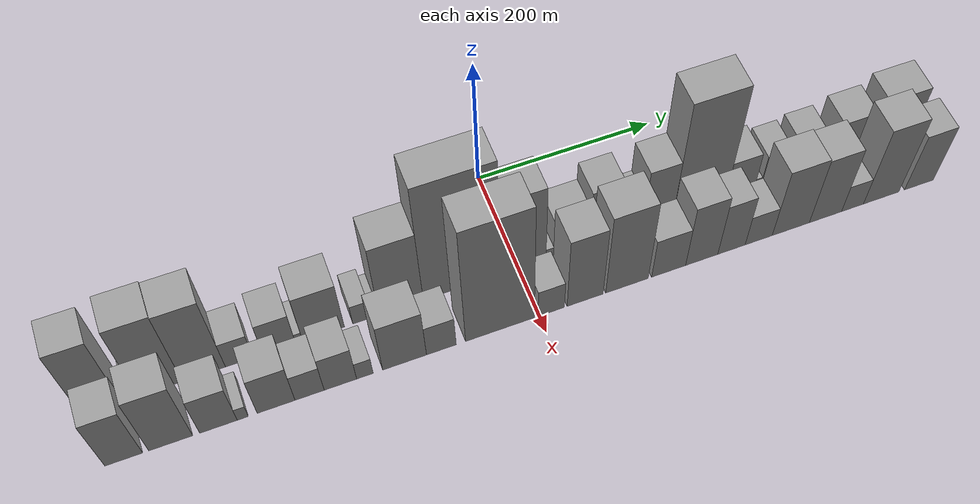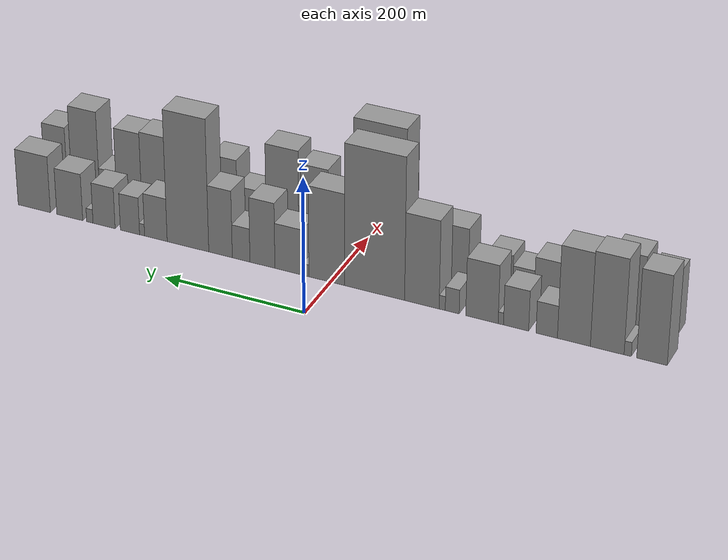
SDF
<sdf version="1.6">
 <world name="default">
  <scene>
   <sky><clouds><speed>12</speed></clouds></sky>
   <ambient>0.4 0.4 0.4 1</ambient>
   <background>0.7 0.7 0.7 1</background>
   <shadows>1</shadows>
  </scene>
  <gravity>0 0 -9.8066</gravity>
  <magnetic_field>6e-06 2.3e-05 -4.2e-05</magnetic_field>
  <physics default="0" name="default_physics" type="ode">
   <ode>
    <solver>
     <type>quick</type>
     <iters>10</iters>
     <sor>1.0</sor>
     <use_dynamic_moi_rescaling>0</use_dynamic_moi_rescaling>
    </solver>
    <constraints>
     <cfm>0</cfm>
     <erp>0.2</erp>
     <contact_max_correcting_vel>100</contact_max_correcting_vel>
     <contact_surface_layer>0.001</contact_surface_layer>
    </constraints>
   </ode>
   <max_step_size>0.004</max_step_size>
   <real_time_factor>1</real_time_factor>
   <real_time_update_rate>250</real_time_update_rate>
  </physics>
  <light name="sun" type="directional">
   <pose>0 0 10 0 0 0</pose>
   <diffuse>0.8 0.8 0.8 1</diffuse>
   <specular>0.2 0.2 0.2 1</specular>
   <attenuation>
    <range>1000</range>
    <constant>0.9</constant>
    <linear>0.01</linear>
    <quadratic>0.001</quadratic>
   </attenuation>
   <direction>-0.5 0.1 -0.9</direction>
  </light>
  <model name="building_1">
   <static>1</static>
   <pose>100.0000 -439.9697 0 0.000000 0.000000 0.000000</pose>
   <link name="link">
    <pose>0 0 66.00 0 0 0</pose>
    <collision name="collision"><geometry><box><size>40.0000 40.0607 132.0000</size></box></geometry></collision>
    <visual name="visual">
     <cast_shadows>0</cast_shadows>
     <geometry><box><size>40.0000 40.0607 132.0000</size></box></geometry>
     <material>
      <script>
       <uri>model://grey_wall/materials/scripts</uri>
       <uri>model://grey_wall/materials/textures</uri>
       <name>vrc/grey_wall</name>
      </script>
     </material>
    </visual>
   </link>
  </model>
  <model name="building_2">
   <static>1</static>
   <pose>100.0000 -408.1510 0 0.000000 0.000000 0.000000</pose>
   <link name="link">
    <pose>0 0 10.50 0 0 0</pose>
    <collision name="collision"><geometry><box><size>40.0000 9.5766 21.0000</size></box></geometry></collision>
    <visual name="visual">
     <cast_shadows>0</cast_shadows>
     <geometry><box><size>40.0000 9.5766 21.0000</size></box></geometry>
     <material>
      <script>
       <uri>model://grey_wall/materials/scripts</uri>
       <uri>model://grey_wall/materials/textures</uri>
       <name>vrc/grey_wall</name>
      </script>
     </material>
    </visual>
   </link>
  </model>
  <model name="building_3">
   <static>1</static>
   <pose>100.0000 -381.0178 0 0.000000 0.000000 0.000000</pose>
   <link name="link">
    <pose>0 0 70.50 0 0 0</pose>
    <collision name="collision"><geometry><box><size>40.0000 44.6897 141.0000</size></box></geometry></collision>
    <visual name="visual">
     <cast_shadows>0</cast_shadows>
     <geometry><box><size>40.0000 44.6897 141.0000</size></box></geometry>
     <material>
      <script>
       <uri>model://grey_wall/materials/scripts</uri>
       <uri>model://grey_wall/materials/textures</uri>
       <name>vrc/grey_wall</name>
      </script>
     </material>
    </visual>
   </link>
  </model>
  <model name="building_4">
   <static>1</static>
   <pose>100.0000 -336.6244 0 0.000000 0.000000 0.000000</pose>
   <link name="link">
    <pose>0 0 69.00 0 0 0</pose>
    <collision name="collision"><geometry><box><size>40.0000 44.0972 138.0000</size></box></geometry></collision>
    <visual name="visual">
     <cast_shadows>0</cast_shadows>
     <geometry><box><size>40.0000 44.0972 138.0000</size></box></geometry>
     <material>
      <script>
       <uri>model://grey_wall/materials/scripts</uri>
       <uri>model://grey_wall/materials/textures</uri>
       <name>vrc/grey_wall</name>
      </script>
     </material>
    </visual>
   </link>
  </model>
  <model name="building_5">
   <static>1</static>
   <pose>100.0000 -300.2039 0 0.000000 0.000000 0.000000</pose>
   <link name="link">
    <pose>0 0 24.00 0 0 0</pose>
    <collision name="collision"><geometry><box><size>40.0000 28.7438 48.0000</size></box></geometry></collision>
    <visual name="visual">
     <cast_shadows>0</cast_shadows>
     <geometry><box><size>40.0000 28.7438 48.0000</size></box></geometry>
     <material>
      <script>
       <uri>model://grey_wall/materials/scripts</uri>
       <uri>model://grey_wall/materials/textures</uri>
       <name>vrc/grey_wall</name>
      </script>
     </material>
    </visual>
   </link>
  </model>
  <model name="building_6">
   <static>1</static>
   <pose>100.0000 -258.7220 0 0.000000 0.000000 0.000000</pose>
   <link name="link">
    <pose>0 0 30.00 0 0 0</pose>
    <collision name="collision"><geometry><box><size>40.0000 34.2200 60.0000</size></box></geometry></collision>
    <visual name="visual">
     <cast_shadows>0</cast_shadows>
     <geometry><box><size>40.0000 34.2200 60.0000</size></box></geometry>
     <material>
      <script>
       <uri>model://grey_wall/materials/scripts</uri>
       <uri>model://grey_wall/materials/textures</uri>
       <name>vrc/grey_wall</name>
      </script>
     </material>
    </visual>
   </link>
  </model>
  <model name="building_7">
   <static>1</static>
   <pose>100.0000 -237.9562 0 0.000000 0.000000 0.000000</pose>
   <link name="link">
    <pose>0 0 9.00 0 0 0</pose>
    <collision name="collision"><geometry><box><size>40.0000 7.3117 18.0000</size></box></geometry></collision>
    <visual name="visual">
     <cast_shadows>0</cast_shadows>
     <geometry><box><size>40.0000 7.3117 18.0000</size></box></geometry>
     <material>
      <script>
       <uri>model://grey_wall/materials/scripts</uri>
       <uri>model://grey_wall/materials/textures</uri>
       <name>vrc/grey_wall</name>
      </script>
     </material>
    </visual>
   </link>
  </model>
  <model name="building_8">
   <static>1</static>
   <pose>100.0000 -212.0829 0 0.000000 0.000000 0.000000</pose>
   <link name="link">
    <pose>0 0 43.50 0 0 0</pose>
    <collision name="collision"><geometry><box><size>40.0000 44.4349 87.0000</size></box></geometry></collision>
    <visual name="visual">
     <cast_shadows>0</cast_shadows>
     <geometry><box><size>40.0000 44.4349 87.0000</size></box></geometry>
     <material>
      <script>
       <uri>model://grey_wall/materials/scripts</uri>
       <uri>model://grey_wall/materials/textures</uri>
       <name>vrc/grey_wall</name>
      </script>
     </material>
    </visual>
   </link>
  </model>
  <model name="building_9">
   <static>1</static>
   <pose>100.0000 -171.2126 0 0.000000 0.000000 0.000000</pose>
   <link name="link">
    <pose>0 0 18.00 0 0 0</pose>
    <collision name="collision"><geometry><box><size>40.0000 19.3058 36.0000</size></box></geometry></collision>
    <visual name="visual">
     <cast_shadows>0</cast_shadows>
     <geometry><box><size>40.0000 19.3058 36.0000</size></box></geometry>
     <material>
      <script>
       <uri>model://grey_wall/materials/scripts</uri>
       <uri>model://grey_wall/materials/textures</uri>
       <name>vrc/grey_wall</name>
      </script>
     </material>
    </visual>
   </link>
  </model>
  <model name="building_10">
   <static>1</static>
   <pose>100.0000 -157.3127 0 0.000000 0.000000 0.000000</pose>
   <link name="link">
    <pose>0 0 10.50 0 0 0</pose>
    <collision name="collision"><geometry><box><size>40.0000 8.4939 21.0000</size></box></geometry></collision>
    <visual name="visual">
     <cast_shadows>0</cast_shadows>
     <geometry><box><size>40.0000 8.4939 21.0000</size></box></geometry>
     <material>
      <script>
       <uri>model://grey_wall/materials/scripts</uri>
       <uri>model://grey_wall/materials/textures</uri>
       <name>vrc/grey_wall</name>
      </script>
     </material>
    </visual>
   </link>
  </model>
  <model name="building_11">
   <static>1</static>
   <pose>100.0000 -128.9891 0 0.000000 0.000000 0.000000</pose>
   <link name="link">
    <pose>0 0 66.00 0 0 0</pose>
    <collision name="collision"><geometry><box><size>40.0000 48.1534 132.0000</size></box></geometry></collision>
    <visual name="visual">
     <cast_shadows>0</cast_shadows>
     <geometry><box><size>40.0000 48.1534 132.0000</size></box></geometry>
     <material>
      <script>
       <uri>model://grey_wall/materials/scripts</uri>
       <uri>model://grey_wall/materials/textures</uri>
       <name>vrc/grey_wall</name>
      </script>
     </material>
    </visual>
   </link>
  </model>
  <model name="building_12">
   <static>1</static>
   <pose>100.0000 -62.3126 0 0.000000 0.000000 0.000000</pose>
   <link name="link">
    <pose>0 0 106.50 0 0 0</pose>
    <collision name="collision"><geometry><box><size>40.0000 85.1994 213.0000</size></box></geometry></collision>
    <visual name="visual">
     <cast_shadows>0</cast_shadows>
     <geometry><box><size>40.0000 85.1994 213.0000</size></box></geometry>
     <material>
      <script>
       <uri>model://grey_wall/materials/scripts</uri>
       <uri>model://grey_wall/materials/textures</uri>
       <name>vrc/grey_wall</name>
      </script>
     </material>
    </visual>
   </link>
  </model>
  <model name="building_13">
   <static>1</static>
   <pose>100.0000 5.7494 0 0.000000 0.000000 0.000000</pose>
   <link name="link">
    <pose>0 0 69.00 0 0 0</pose>
    <collision name="collision"><geometry><box><size>40.0000 50.9246 138.0000</size></box></geometry></collision>
    <visual name="visual">
     <cast_shadows>0</cast_shadows>
     <geometry><box><size>40.0000 50.9246 138.0000</size></box></geometry>
     <material>
      <script>
       <uri>model://grey_wall/materials/scripts</uri>
       <uri>model://grey_wall/materials/textures</uri>
       <name>vrc/grey_wall</name>
      </script>
     </material>
    </visual>
   </link>
  </model>
  <model name="building_14">
   <static>1</static>
   <pose>100.0000 35.6556 0 0.000000 0.000000 0.000000</pose>
   <link name="link">
    <pose>0 0 9.00 0 0 0</pose>
    <collision name="collision"><geometry><box><size>40.0000 8.8877 18.0000</size></box></geometry></collision>
    <visual name="visual">
     <cast_shadows>0</cast_shadows>
     <geometry><box><size>40.0000 8.8877 18.0000</size></box></geometry>
     <material>
      <script>
       <uri>model://grey_wall/materials/scripts</uri>
       <uri>model://grey_wall/materials/textures</uri>
       <name>vrc/grey_wall</name>
      </script>
     </material>
    </visual>
   </link>
  </model>
  <model name="building_15">
   <static>1</static>
   <pose>100.0000 60.1877 0 0.000000 0.000000 0.000000</pose>
   <link name="link">
    <pose>0 0 34.50 0 0 0</pose>
    <collision name="collision"><geometry><box><size>40.0000 40.1766 69.0000</size></box></geometry></collision>
    <visual name="visual">
     <cast_shadows>0</cast_shadows>
     <geometry><box><size>40.0000 40.1766 69.0000</size></box></geometry>
     <material>
      <script>
       <uri>model://grey_wall/materials/scripts</uri>
       <uri>model://grey_wall/materials/textures</uri>
       <name>vrc/grey_wall</name>
      </script>
     </material>
    </visual>
   </link>
  </model>
  <model name="building_16">
   <static>1</static>
   <pose>100.0000 98.4951 0 0.000000 0.000000 0.000000</pose>
   <link name="link">
    <pose>0 0 49.50 0 0 0</pose>
    <collision name="collision"><geometry><box><size>40.0000 36.4381 99.0000</size></box></geometry></collision>
    <visual name="visual">
     <cast_shadows>0</cast_shadows>
     <geometry><box><size>40.0000 36.4381 99.0000</size></box></geometry>
     <material>
      <script>
       <uri>model://grey_wall/materials/scripts</uri>
       <uri>model://grey_wall/materials/textures</uri>
       <name>vrc/grey_wall</name>
      </script>
     </material>
    </visual>
   </link>
  </model>
  <model name="building_17">
   <static>1</static>
   <pose>100.0000 129.6607 0 0.000000 0.000000 0.000000</pose>
   <link name="link">
    <pose>0 0 25.50 0 0 0</pose>
    <collision name="collision"><geometry><box><size>40.0000 25.8931 51.0000</size></box></geometry></collision>
    <visual name="visual">
     <cast_shadows>0</cast_shadows>
     <geometry><box><size>40.0000 25.8931 51.0000</size></box></geometry>
     <material>
      <script>
       <uri>model://grey_wall/materials/scripts</uri>
       <uri>model://grey_wall/materials/textures</uri>
       <name>vrc/grey_wall</name>
      </script>
     </material>
    </visual>
   </link>
  </model>
  <model name="building_18">
   <static>1</static>
   <pose>100.0000 160.0045 0 0.000000 0.000000 0.000000</pose>
   <link name="link">
    <pose>0 0 51.00 0 0 0</pose>
    <collision name="collision"><geometry><box><size>40.0000 34.7945 102.0000</size></box></geometry></collision>
    <visual name="visual">
     <cast_shadows>0</cast_shadows>
     <geometry><box><size>40.0000 34.7945 102.0000</size></box></geometry>
     <material>
      <script>
       <uri>model://grey_wall/materials/scripts</uri>
       <uri>model://grey_wall/materials/textures</uri>
       <name>vrc/grey_wall</name>
      </script>
     </material>
    </visual>
   </link>
  </model>
  <model name="building_19">
   <static>1</static>
   <pose>100.0000 208.4184 0 0.000000 0.000000 0.000000</pose>
   <link name="link">
    <pose>0 0 100.50 0 0 0</pose>
    <collision name="collision"><geometry><box><size>40.0000 62.0334 201.0000</size></box></geometry></collision>
    <visual name="visual">
     <cast_shadows>0</cast_shadows>
     <geometry><box><size>40.0000 62.0334 201.0000</size></box></geometry>
     <material>
      <script>
       <uri>model://grey_wall/materials/scripts</uri>
       <uri>model://grey_wall/materials/textures</uri>
       <name>vrc/grey_wall</name>
      </script>
     </material>
    </visual>
   </link>
  </model>
  <model name="building_20">
   <static>1</static>
   <pose>100.0000 256.4782 0 0.000000 0.000000 0.000000</pose>
   <link name="link">
    <pose>0 0 33.00 0 0 0</pose>
    <collision name="collision"><geometry><box><size>40.0000 34.0862 66.0000</size></box></geometry></collision>
    <visual name="visual">
     <cast_shadows>0</cast_shadows>
     <geometry><box><size>40.0000 34.0862 66.0000</size></box></geometry>
     <material>
      <script>
       <uri>model://grey_wall/materials/scripts</uri>
       <uri>model://grey_wall/materials/textures</uri>
       <name>vrc/grey_wall</name>
      </script>
     </material>
    </visual>
   </link>
  </model>
  <model name="building_21">
   <static>1</static>
   <pose>100.0000 277.2984 0 0.000000 0.000000 0.000000</pose>
   <link name="link">
    <pose>0 0 9.00 0 0 0</pose>
    <collision name="collision"><geometry><box><size>40.0000 7.5541 18.0000</size></box></geometry></collision>
    <visual name="visual">
     <cast_shadows>0</cast_shadows>
     <geometry><box><size>40.0000 7.5541 18.0000</size></box></geometry>
     <material>
      <script>
       <uri>model://grey_wall/materials/scripts</uri>
       <uri>model://grey_wall/materials/textures</uri>
       <name>vrc/grey_wall</name>
      </script>
     </material>
    </visual>
   </link>
  </model>
  <model name="building_22">
   <static>1</static>
   <pose>100.0000 295.6410 0 0.000000 0.000000 0.000000</pose>
   <link name="link">
    <pose>0 0 28.50 0 0 0</pose>
    <collision name="collision"><geometry><box><size>40.0000 29.1310 57.0000</size></box></geometry></collision>
    <visual name="visual">
     <cast_shadows>0</cast_shadows>
     <geometry><box><size>40.0000 29.1310 57.0000</size></box></geometry>
     <material>
      <script>
       <uri>model://grey_wall/materials/scripts</uri>
       <uri>model://grey_wall/materials/textures</uri>
       <name>vrc/grey_wall</name>
      </script>
     </material>
    </visual>
   </link>
  </model>
  <model name="building_23">
   <static>1</static>
   <pose>100.0000 335.0737 0 0.000000 0.000000 0.000000</pose>
   <link name="link">
    <pose>0 0 31.50 0 0 0</pose>
    <collision name="collision"><geometry><box><size>40.0000 33.7344 63.0000</size></box></geometry></collision>
    <visual name="visual">
     <cast_shadows>0</cast_shadows>
     <geometry><box><size>40.0000 33.7344 63.0000</size></box></geometry>
     <material>
      <script>
       <uri>model://grey_wall/materials/scripts</uri>
       <uri>model://grey_wall/materials/textures</uri>
       <name>vrc/grey_wall</name>
      </script>
     </material>
    </visual>
   </link>
  </model>
  <model name="building_24">
   <static>1</static>
   <pose>100.0000 356.8381 0 0.000000 0.000000 0.000000</pose>
   <link name="link">
    <pose>0 0 10.50 0 0 0</pose>
    <collision name="collision"><geometry><box><size>40.0000 9.7946 21.0000</size></box></geometry></collision>
    <visual name="visual">
     <cast_shadows>0</cast_shadows>
     <geometry><box><size>40.0000 9.7946 21.0000</size></box></geometry>
     <material>
      <script>
       <uri>model://grey_wall/materials/scripts</uri>
       <uri>model://grey_wall/materials/textures</uri>
       <name>vrc/grey_wall</name>
      </script>
     </material>
    </visual>
   </link>
  </model>
  <model name="building_25">
   <static>1</static>
   <pose>100.0000 387.7678 0 0.000000 0.000000 0.000000</pose>
   <link name="link">
    <pose>0 0 36.00 0 0 0</pose>
    <collision name="collision"><geometry><box><size>40.0000 40.0648 72.0000</size></box></geometry></collision>
    <visual name="visual">
     <cast_shadows>0</cast_shadows>
     <geometry><box><size>40.0000 40.0648 72.0000</size></box></geometry>
     <material>
      <script>
       <uri>model://grey_wall/materials/scripts</uri>
       <uri>model://grey_wall/materials/textures</uri>
       <name>vrc/grey_wall</name>
      </script>
     </material>
    </visual>
   </link>
  </model>
  <model name="building_26">
   <static>1</static>
   <pose>100.0000 442.8852 0 0.000000 0.000000 0.000000</pose>
   <link name="link">
    <pose>0 0 43.50 0 0 0</pose>
    <collision name="collision"><geometry><box><size>40.0000 50.1699 87.0000</size></box></geometry></collision>
    <visual name="visual">
     <cast_shadows>0</cast_shadows>
     <geometry><box><size>40.0000 50.1699 87.0000</size></box></geometry>
     <material>
      <script>
       <uri>model://grey_wall/materials/scripts</uri>
       <uri>model://grey_wall/materials/textures</uri>
       <name>vrc/grey_wall</name>
      </script>
     </material>
    </visual>
   </link>
  </model>
  <model name="building_27">
   <static>1</static>
   <pose>160.0000 -431.4480 0 0.000000 0.000000 0.000000</pose>
   <link name="link">
    <pose>0 0 48.00 0 0 0</pose>
    <collision name="collision"><geometry><box><size>40.0000 37.1040 96.0000</size></box></geometry></collision>
    <visual name="visual">
     <cast_shadows>0</cast_shadows>
     <geometry><box><size>40.0000 37.1040 96.0000</size></box></geometry>
     <material>
      <script>
       <uri>model://grey_wall/materials/scripts</uri>
       <uri>model://grey_wall/materials/textures</uri>
       <name>vrc/grey_wall</name>
      </script>
     </material>
    </visual>
   </link>
  </model>
  <model name="building_28">
   <static>1</static>
   <pose>160.0000 -385.0804 0 0.000000 0.000000 0.000000</pose>
   <link name="link">
    <pose>0 0 55.50 0 0 0</pose>
    <collision name="collision"><geometry><box><size>40.0000 43.6311 111.0000</size></box></geometry></collision>
    <visual name="visual">
     <cast_shadows>0</cast_shadows>
     <geometry><box><size>40.0000 43.6311 111.0000</size></box></geometry>
     <material>
      <script>
       <uri>model://grey_wall/materials/scripts</uri>
       <uri>model://grey_wall/materials/textures</uri>
       <name>vrc/grey_wall</name>
      </script>
     </material>
    </visual>
   </link>
  </model>
  <model name="building_29">
   <static>1</static>
   <pose>160.0000 -337.3697 0 0.000000 0.000000 0.000000</pose>
   <link name="link">
    <pose>0 0 36.00 0 0 0</pose>
    <collision name="collision"><geometry><box><size>40.0000 37.7904 72.0000</size></box></geometry></collision>
    <visual name="visual">
     <cast_shadows>0</cast_shadows>
     <geometry><box><size>40.0000 37.7904 72.0000</size></box></geometry>
     <material>
      <script>
       <uri>model://grey_wall/materials/scripts</uri>
       <uri>model://grey_wall/materials/textures</uri>
       <name>vrc/grey_wall</name>
      </script>
     </material>
    </visual>
   </link>
  </model>
  <model name="building_30">
   <static>1</static>
   <pose>160.0000 -312.9002 0 0.000000 0.000000 0.000000</pose>
   <link name="link">
    <pose>0 0 12.00 0 0 0</pose>
    <collision name="collision"><geometry><box><size>40.0000 11.1485 24.0000</size></box></geometry></collision>
    <visual name="visual">
     <cast_shadows>0</cast_shadows>
     <geometry><box><size>40.0000 11.1485 24.0000</size></box></geometry>
     <material>
      <script>
       <uri>model://grey_wall/materials/scripts</uri>
       <uri>model://grey_wall/materials/textures</uri>
       <name>vrc/grey_wall</name>
      </script>
     </material>
    </visual>
   </link>
  </model>
  <model name="building_31">
   <static>1</static>
   <pose>160.0000 -278.9935 0 0.000000 0.000000 0.000000</pose>
   <link name="link">
    <pose>0 0 36.00 0 0 0</pose>
    <collision name="collision"><geometry><box><size>40.0000 38.6649 72.0000</size></box></geometry></collision>
    <visual name="visual">
     <cast_shadows>0</cast_shadows>
     <geometry><box><size>40.0000 38.6649 72.0000</size></box></geometry>
     <material>
      <script>
       <uri>model://grey_wall/materials/scripts</uri>
       <uri>model://grey_wall/materials/textures</uri>
       <name>vrc/grey_wall</name>
      </script>
     </material>
    </visual>
   </link>
  </model>
  <model name="building_32">
   <static>1</static>
   <pose>160.0000 -244.6163 0 0.000000 0.000000 0.000000</pose>
   <link name="link">
    <pose>0 0 25.50 0 0 0</pose>
    <collision name="collision"><geometry><box><size>40.0000 30.0895 51.0000</size></box></geometry></collision>
    <visual name="visual">
     <cast_shadows>0</cast_shadows>
     <geometry><box><size>40.0000 30.0895 51.0000</size></box></geometry>
     <material>
      <script>
       <uri>model://grey_wall/materials/scripts</uri>
       <uri>model://grey_wall/materials/textures</uri>
       <name>vrc/grey_wall</name>
      </script>
     </material>
    </visual>
   </link>
  </model>
  <model name="building_33">
   <static>1</static>
   <pose>160.0000 -212.6972 0 0.000000 0.000000 0.000000</pose>
   <link name="link">
    <pose>0 0 33.00 0 0 0</pose>
    <collision name="collision"><geometry><box><size>40.0000 33.7487 66.0000</size></box></geometry></collision>
    <visual name="visual">
     <cast_shadows>0</cast_shadows>
     <geometry><box><size>40.0000 33.7487 66.0000</size></box></geometry>
     <material>
      <script>
       <uri>model://grey_wall/materials/scripts</uri>
       <uri>model://grey_wall/materials/textures</uri>
       <name>vrc/grey_wall</name>
      </script>
     </material>
    </visual>
   </link>
  </model>
  <model name="building_34">
   <static>1</static>
   <pose>160.0000 -187.1553 0 0.000000 0.000000 0.000000</pose>
   <link name="link">
    <pose>0 0 16.50 0 0 0</pose>
    <collision name="collision"><geometry><box><size>40.0000 17.3351 33.0000</size></box></geometry></collision>
    <visual name="visual">
     <cast_shadows>0</cast_shadows>
     <geometry><box><size>40.0000 17.3351 33.0000</size></box></geometry>
     <material>
      <script>
       <uri>model://grey_wall/materials/scripts</uri>
       <uri>model://grey_wall/materials/textures</uri>
       <name>vrc/grey_wall</name>
      </script>
     </material>
    </visual>
   </link>
  </model>
  <model name="building_35">
   <static>1</static>
   <pose>160.0000 -145.2819 0 0.000000 0.000000 0.000000</pose>
   <link name="link">
    <pose>0 0 45.00 0 0 0</pose>
    <collision name="collision"><geometry><box><size>40.0000 46.4117 90.0000</size></box></geometry></collision>
    <visual name="visual">
     <cast_shadows>0</cast_shadows>
     <geometry><box><size>40.0000 46.4117 90.0000</size></box></geometry>
     <material>
      <script>
       <uri>model://grey_wall/materials/scripts</uri>
       <uri>model://grey_wall/materials/textures</uri>
       <name>vrc/grey_wall</name>
      </script>
     </material>
    </visual>
   </link>
  </model>
  <model name="building_36">
   <static>1</static>
   <pose>160.0000 -106.1608 0 0.000000 0.000000 0.000000</pose>
   <link name="link">
    <pose>0 0 28.50 0 0 0</pose>
    <collision name="collision"><geometry><box><size>40.0000 31.8306 57.0000</size></box></geometry></collision>
    <visual name="visual">
     <cast_shadows>0</cast_shadows>
     <geometry><box><size>40.0000 31.8306 57.0000</size></box></geometry>
     <material>
      <script>
       <uri>model://grey_wall/materials/scripts</uri>
       <uri>model://grey_wall/materials/textures</uri>
       <name>vrc/grey_wall</name>
      </script>
     </material>
    </visual>
   </link>
  </model>
  <model name="building_37">
   <static>1</static>
   <pose>160.0000 -42.8078 0 0.000000 0.000000 0.000000</pose>
   <link name="link">
    <pose>0 0 108.00 0 0 0</pose>
    <collision name="collision"><geometry><box><size>40.0000 74.8755 216.0000</size></box></geometry></collision>
    <visual name="visual">
     <cast_shadows>0</cast_shadows>
     <geometry><box><size>40.0000 74.8755 216.0000</size></box></geometry>
     <material>
      <script>
       <uri>model://grey_wall/materials/scripts</uri>
       <uri>model://grey_wall/materials/textures</uri>
       <name>vrc/grey_wall</name>
      </script>
     </material>
    </visual>
   </link>
  </model>
  <model name="building_38">
   <static>1</static>
   <pose>160.0000 13.2323 0 0.000000 0.000000 0.000000</pose>
   <link name="link">
    <pose>0 0 25.50 0 0 0</pose>
    <collision name="collision"><geometry><box><size>40.0000 29.2047 51.0000</size></box></geometry></collision>
    <visual name="visual">
     <cast_shadows>0</cast_shadows>
     <geometry><box><size>40.0000 29.2047 51.0000</size></box></geometry>
     <material>
      <script>
       <uri>model://grey_wall/materials/scripts</uri>
       <uri>model://grey_wall/materials/textures</uri>
       <name>vrc/grey_wall</name>
      </script>
     </material>
    </visual>
   </link>
  </model>
  <model name="building_39">
   <static>1</static>
   <pose>160.0000 50.8730 0 0.000000 0.000000 0.000000</pose>
   <link name="link">
    <pose>0 0 64.50 0 0 0</pose>
    <collision name="collision"><geometry><box><size>40.0000 40.0767 129.0000</size></box></geometry></collision>
    <visual name="visual">
     <cast_shadows>0</cast_shadows>
     <geometry><box><size>40.0000 40.0767 129.0000</size></box></geometry>
     <material>
      <script>
       <uri>model://grey_wall/materials/scripts</uri>
       <uri>model://grey_wall/materials/textures</uri>
       <name>vrc/grey_wall</name>
      </script>
     </material>
    </visual>
   </link>
  </model>
  <model name="building_40">
   <static>1</static>
   <pose>160.0000 97.8674 0 0.000000 0.000000 0.000000</pose>
   <link name="link">
    <pose>0 0 73.50 0 0 0</pose>
    <collision name="collision"><geometry><box><size>40.0000 47.9120 147.0000</size></box></geometry></collision>
    <visual name="visual">
     <cast_shadows>0</cast_shadows>
     <geometry><box><size>40.0000 47.9120 147.0000</size></box></geometry>
     <material>
      <script>
       <uri>model://grey_wall/materials/scripts</uri>
       <uri>model://grey_wall/materials/textures</uri>
       <name>vrc/grey_wall</name>
      </script>
     </material>
    </visual>
   </link>
  </model>
  <model name="building_41">
   <static>1</static>
   <pose>160.0000 145.2065 0 0.000000 0.000000 0.000000</pose>
   <link name="link">
    <pose>0 0 36.00 0 0 0</pose>
    <collision name="collision"><geometry><box><size>40.0000 38.7661 72.0000</size></box></geometry></collision>
    <visual name="visual">
     <cast_shadows>0</cast_shadows>
     <geometry><box><size>40.0000 38.7661 72.0000</size></box></geometry>
     <material>
      <script>
       <uri>model://grey_wall/materials/scripts</uri>
       <uri>model://grey_wall/materials/textures</uri>
       <name>vrc/grey_wall</name>
      </script>
     </material>
    </visual>
   </link>
  </model>
  <model name="building_42">
   <static>1</static>
   <pose>160.0000 183.1863 0 0.000000 0.000000 0.000000</pose>
   <link name="link">
    <pose>0 0 55.50 0 0 0</pose>
    <collision name="collision"><geometry><box><size>40.0000 37.1935 111.0000</size></box></geometry></collision>
    <visual name="visual">
     <cast_shadows>0</cast_shadows>
     <geometry><box><size>40.0000 37.1935 111.0000</size></box></geometry>
     <material>
      <script>
       <uri>model://grey_wall/materials/scripts</uri>
       <uri>model://grey_wall/materials/textures</uri>
       <name>vrc/grey_wall</name>
      </script>
     </material>
    </visual>
   </link>
  </model>
  <model name="building_43">
   <static>1</static>
   <pose>160.0000 217.7549 0 0.000000 0.000000 0.000000</pose>
   <link name="link">
    <pose>0 0 46.50 0 0 0</pose>
    <collision name="collision"><geometry><box><size>40.0000 31.9437 93.0000</size></box></geometry></collision>
    <visual name="visual">
     <cast_shadows>0</cast_shadows>
     <geometry><box><size>40.0000 31.9437 93.0000</size></box></geometry>
     <material>
      <script>
       <uri>model://grey_wall/materials/scripts</uri>
       <uri>model://grey_wall/materials/textures</uri>
       <name>vrc/grey_wall</name>
      </script>
     </material>
    </visual>
   </link>
  </model>
  <model name="building_44">
   <static>1</static>
   <pose>160.0000 249.5919 0 0.000000 0.000000 0.000000</pose>
   <link name="link">
    <pose>0 0 27.00 0 0 0</pose>
    <collision name="collision"><geometry><box><size>40.0000 31.7304 54.0000</size></box></geometry></collision>
    <visual name="visual">
     <cast_shadows>0</cast_shadows>
     <geometry><box><size>40.0000 31.7304 54.0000</size></box></geometry>
     <material>
      <script>
       <uri>model://grey_wall/materials/scripts</uri>
       <uri>model://grey_wall/materials/textures</uri>
       <name>vrc/grey_wall</name>
      </script>
     </material>
    </visual>
   </link>
  </model>
  <model name="building_45">
   <static>1</static>
   <pose>160.0000 287.4632 0 0.000000 0.000000 0.000000</pose>
   <link name="link">
    <pose>0 0 60.00 0 0 0</pose>
    <collision name="collision"><geometry><box><size>40.0000 44.0123 120.0000</size></box></geometry></collision>
    <visual name="visual">
     <cast_shadows>0</cast_shadows>
     <geometry><box><size>40.0000 44.0123 120.0000</size></box></geometry>
     <material>
      <script>
       <uri>model://grey_wall/materials/scripts</uri>
       <uri>model://grey_wall/materials/textures</uri>
       <name>vrc/grey_wall</name>
      </script>
     </material>
    </visual>
   </link>
  </model>
  <model name="building_46">
   <static>1</static>
   <pose>160.0000 328.7568 0 0.000000 0.000000 0.000000</pose>
   <link name="link">
    <pose>0 0 58.50 0 0 0</pose>
    <collision name="collision"><geometry><box><size>40.0000 38.5747 117.0000</size></box></geometry></collision>
    <visual name="visual">
     <cast_shadows>0</cast_shadows>
     <geometry><box><size>40.0000 38.5747 117.0000</size></box></geometry>
     <material>
      <script>
       <uri>model://grey_wall/materials/scripts</uri>
       <uri>model://grey_wall/materials/textures</uri>
       <name>vrc/grey_wall</name>
      </script>
     </material>
    </visual>
   </link>
  </model>
  <model name="building_47">
   <static>1</static>
   <pose>160.0000 361.2684 0 0.000000 0.000000 0.000000</pose>
   <link name="link">
    <pose>0 0 24.00 0 0 0</pose>
    <collision name="collision"><geometry><box><size>40.0000 26.4486 48.0000</size></box></geometry></collision>
    <visual name="visual">
     <cast_shadows>0</cast_shadows>
     <geometry><box><size>40.0000 26.4486 48.0000</size></box></geometry>
     <material>
      <script>
       <uri>model://grey_wall/materials/scripts</uri>
       <uri>model://grey_wall/materials/textures</uri>
       <name>vrc/grey_wall</name>
      </script>
     </material>
    </visual>
   </link>
  </model>
  <model name="building_48">
   <static>1</static>
   <pose>160.0000 396.1032 0 0.000000 0.000000 0.000000</pose>
   <link name="link">
    <pose>0 0 67.50 0 0 0</pose>
    <collision name="collision"><geometry><box><size>40.0000 43.2210 135.0000</size></box></geometry></collision>
    <visual name="visual">
     <cast_shadows>0</cast_shadows>
     <geometry><box><size>40.0000 43.2210 135.0000</size></box></geometry>
     <material>
      <script>
       <uri>model://grey_wall/materials/scripts</uri>
       <uri>model://grey_wall/materials/textures</uri>
       <name>vrc/grey_wall</name>
      </script>
     </material>
    </visual>
   </link>
  </model>
  <model name="building_49">
   <static>1</static>
   <pose>160.0000 442.4827 0 0.000000 0.000000 0.000000</pose>
   <link name="link">
    <pose>0 0 49.50 0 0 0</pose>
    <collision name="collision"><geometry><box><size>40.0000 35.5379 99.0000</size></box></geometry></collision>
    <visual name="visual">
     <cast_shadows>0</cast_shadows>
     <geometry><box><size>40.0000 35.5379 99.0000</size></box></geometry>
     <material>
      <script>
       <uri>model://grey_wall/materials/scripts</uri>
       <uri>model://grey_wall/materials/textures</uri>
       <name>vrc/grey_wall</name>
      </script>
     </material>
    </visual>
   </link>
  </model>
 </world>
</sdf>
